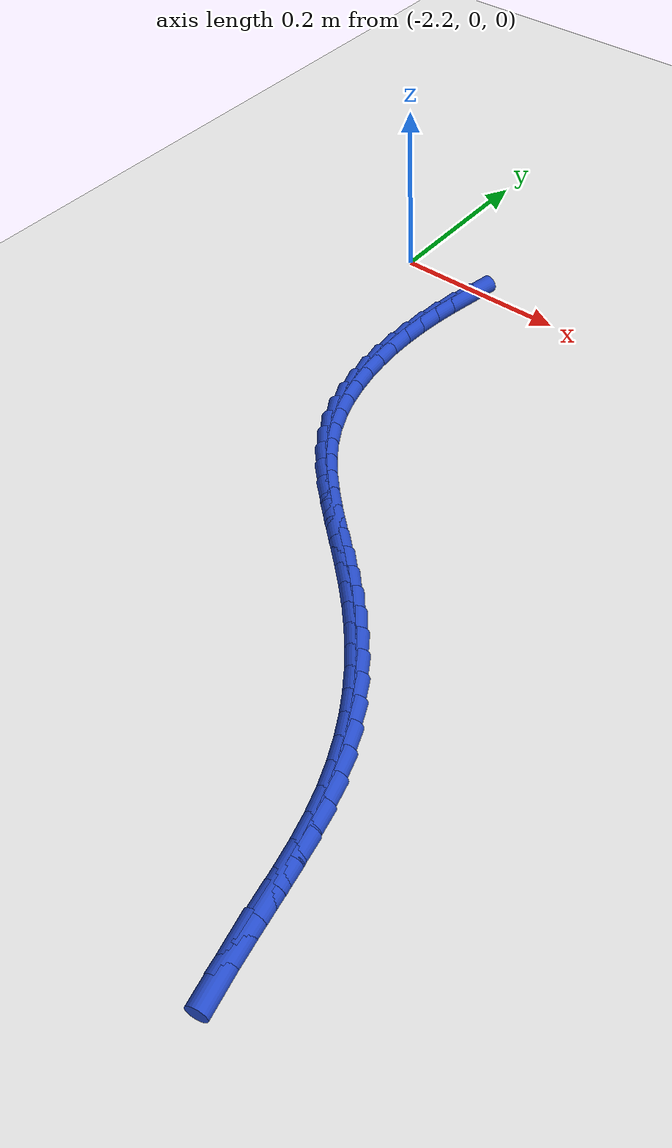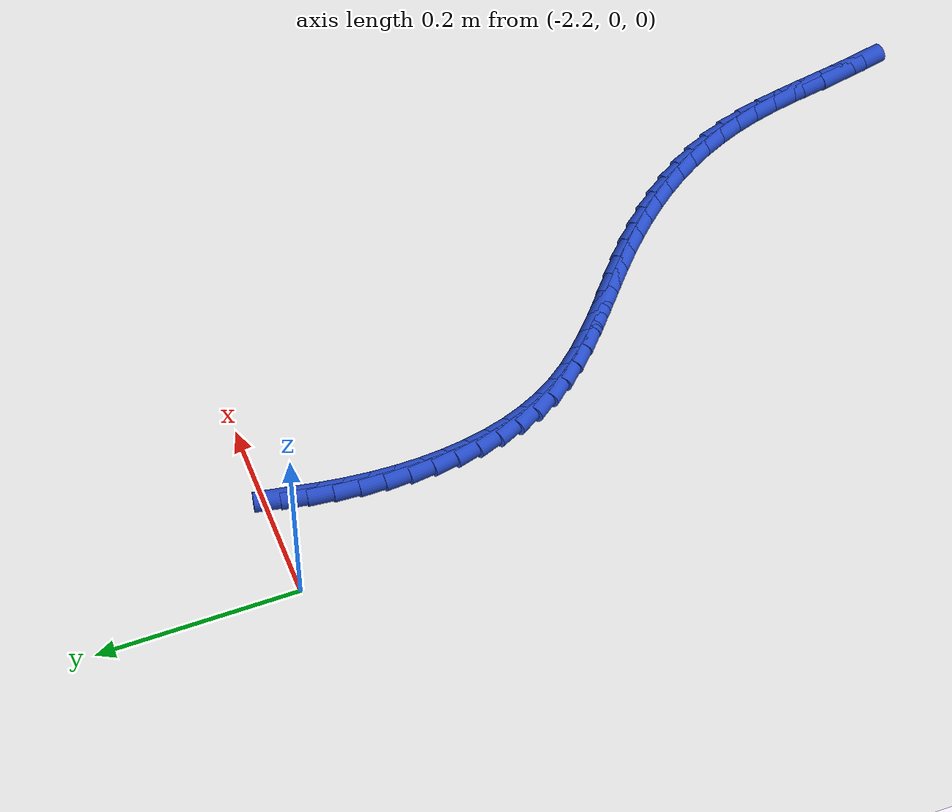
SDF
<sdf version="1.6">
 <world name="default">
  <model name="ground_plane">
   <static>1</static>
   <link name="link">
    <collision name="collision">
     <geometry><plane><normal>0 0 1</normal><size>100 100</size></plane></geometry>
     <surface><friction><ode><mu>100</mu><mu2>50</mu2></ode></friction></surface>
    </collision>
    <visual name="visual">
     <cast_shadows>0</cast_shadows>
     <geometry><plane><normal>0 0 1</normal><size>100 100</size></plane></geometry>
     <material>
      <script><uri>file://media/materials/scripts/gazebo.material</uri><name>Gazebo/WhiteGlow</name></script>
     </material>
    </visual>
   </link>
  </model>
  <model name="line">
   <link name="link_140">
    <pose>-2.100947286793525 -0.02749661532915055 0.01 0 1.57 1.386808997985382</pose>
    <collision name="collision">
     <geometry><cylinder><radius>0.01</radius><length>0.08</length></cylinder></geometry>
    </collision>
    <visual name="visual">
     <material>
      <script><name>Gazebo/Blue</name><uri>file://media/materials/scripts/gazebo.material</uri></script>
     </material>
     <geometry><cylinder><radius>0.01</radius><length>0.08</length></cylinder></geometry>
    </visual>
   </link>
   <link name="link_141">
    <pose>-2.105563423923904 -0.052302300369996446 0.01 0 1.57 1.4303812375989882</pose>
    <collision name="collision">
     <geometry><cylinder><radius>0.01</radius><length>0.08</length></cylinder></geometry>
    </collision>
    <visual name="visual">
     <material>
      <script><name>Gazebo/Blue</name><uri>file://media/materials/scripts/gazebo.material</uri></script>
     </material>
     <geometry><cylinder><radius>0.01</radius><length>0.08</length></cylinder></geometry>
    </visual>
   </link>
   <link name="link_142">
    <pose>-2.1090977252058356 -0.07730704036752022 0.01 0 1.57 1.476584101286767</pose>
    <collision name="collision">
     <geometry><cylinder><radius>0.01</radius><length>0.08</length></cylinder></geometry>
    </collision>
    <visual name="visual">
     <material>
      <script><name>Gazebo/Blue</name><uri>file://media/materials/scripts/gazebo.material</uri></script>
     </material>
     <geometry><cylinder><radius>0.01</radius><length>0.08</length></cylinder></geometry>
    </visual>
   </link>
   <link name="link_143">
    <pose>-2.1114665081755817 -0.10237565977307052 0.01 0 1.57 1.5260381555016607</pose>
    <collision name="collision">
     <geometry><cylinder><radius>0.01</radius><length>0.08</length></cylinder></geometry>
    </collision>
    <visual name="visual">
     <material>
      <script><name>Gazebo/Blue</name><uri>file://media/materials/scripts/gazebo.material</uri></script>
     </material>
     <geometry><cylinder><radius>0.01</radius><length>0.08</length></cylinder></geometry>
    </visual>
   </link>
   <link name="link_144">
    <pose>-2.1125860903694034 -0.12737298303799602 0.01 0 1.57 -1.5621925165578252</pose>
    <collision name="collision">
     <geometry><cylinder><radius>0.01</radius><length>0.08</length></cylinder></geometry>
    </collision>
    <visual name="visual">
     <material>
      <script><name>Gazebo/Blue</name><uri>file://media/materials/scripts/gazebo.material</uri></script>
     </material>
     <geometry><cylinder><radius>0.01</radius><length>0.08</length></cylinder></geometry>
    </visual>
   </link>
   <link name="link_145">
    <pose>-2.1123727893235626 -0.15216383461364524 0.01 0 1.57 -1.5042314290446446</pose>
    <collision name="collision">
     <geometry><cylinder><radius>0.01</radius><length>0.08</length></cylinder></geometry>
    </collision>
    <visual name="visual">
     <material>
      <script><name>Gazebo/Blue</name><uri>file://media/materials/scripts/gazebo.material</uri></script>
     </material>
     <geometry><cylinder><radius>0.01</radius><length>0.08</length></cylinder></geometry>
    </visual>
   </link>
   <link name="link_146">
    <pose>-2.11074292257432 -0.17661303895136762 0.01 0 1.57 -1.4409591525752148</pose>
    <collision name="collision">
     <geometry><cylinder><radius>0.01</radius><length>0.08</length></cylinder></geometry>
    </collision>
    <visual name="visual">
     <material>
      <script><name>Gazebo/Blue</name><uri>file://media/materials/scripts/gazebo.material</uri></script>
     </material>
     <geometry><cylinder><radius>0.01</radius><length>0.08</length></cylinder></geometry>
    </visual>
   </link>
   <link name="link_147">
    <pose>-2.107612807657938 -0.20058542050251027 0.01 0 1.57 -1.3716738801312711</pose>
    <collision name="collision">
     <geometry><cylinder><radius>0.01</radius><length>0.08</length></cylinder></geometry>
    </collision>
    <visual name="visual">
     <material>
      <script><name>Gazebo/Blue</name><uri>file://media/materials/scripts/gazebo.material</uri></script>
     </material>
     <geometry><cylinder><radius>0.01</radius><length>0.08</length></cylinder></geometry>
    </visual>
   </link>
   <link name="link_148">
    <pose>-2.102898762110678 -0.2239458037184226 0.01 0 1.57 -1.295740090590028</pose>
    <collision name="collision">
     <geometry><cylinder><radius>0.01</radius><length>0.08</length></cylinder></geometry>
    </collision>
    <visual name="visual">
     <material>
      <script><name>Gazebo/Blue</name><uri>file://media/materials/scripts/gazebo.material</uri></script>
     </material>
     <geometry><cylinder><radius>0.01</radius><length>0.08</length></cylinder></geometry>
    </visual>
   </link>
   <link name="link_149">
    <pose>-2.0965171034687997 -0.2465590130504531 0.01 0 1.57 -1.2126760920760444</pose>
    <collision name="collision">
     <geometry><cylinder><radius>0.01</radius><length>0.08</length></cylinder></geometry>
    </collision>
    <visual name="visual">
     <material>
      <script><name>Gazebo/Blue</name><uri>file://media/materials/scripts/gazebo.material</uri></script>
     </material>
     <geometry><cylinder><radius>0.01</radius><length>0.08</length></cylinder></geometry>
    </visual>
   </link>
   <link name="link_150">
    <pose>-2.0883841492685664 -0.26828987294995055 0.01 0 1.57 -1.1222750373897283</pose>
    <collision name="collision">
     <geometry><cylinder><radius>0.01</radius><length>0.08</length></cylinder></geometry>
    </collision>
    <visual name="visual">
     <material>
      <script><name>Gazebo/Blue</name><uri>file://media/materials/scripts/gazebo.material</uri></script>
     </material>
     <geometry><cylinder><radius>0.01</radius><length>0.08</length></cylinder></geometry>
    </visual>
   </link>
   <link name="link_151">
    <pose>-2.0784162170462386 -0.28900320786826345 0.01 0 1.57 -1.0247809444451872</pose>
    <collision name="collision">
     <geometry><cylinder><radius>0.01</radius><length>0.08</length></cylinder></geometry>
    </collision>
    <visual name="visual">
     <material>
      <script><name>Gazebo/Blue</name><uri>file://media/materials/scripts/gazebo.material</uri></script>
     </material>
     <geometry><cylinder><radius>0.01</radius><length>0.08</length></cylinder></geometry>
    </visual>
   </link>
   <link name="link_152">
    <pose>-2.0665301792624806 -0.30856431925571265 0.01 0 1.57 -0.9276226216510821</pose>
    <collision name="collision">
     <geometry><cylinder><radius>0.01</radius><length>0.08</length></cylinder></geometry>
    </collision>
    <visual name="visual">
     <material>
      <script><name>Gazebo/Blue</name><uri>file://media/materials/scripts/gazebo.material</uri></script>
     </material>
     <geometry><cylinder><radius>0.01</radius><length>0.08</length></cylinder></geometry>
    </visual>
   </link>
   <link name="link_153">
    <pose>-2.0527590562285143 -0.32693834631540714 0.01 0 1.57 -0.8466984680146145</pose>
    <collision name="collision">
     <geometry><cylinder><radius>0.01</radius><length>0.08</length></cylinder></geometry>
    </collision>
    <visual name="visual">
     <material>
      <script><name>Gazebo/Blue</name><uri>file://media/materials/scripts/gazebo.material</uri></script>
     </material>
     <geometry><cylinder><radius>0.01</radius><length>0.08</length></cylinder></geometry>
    </visual>
   </link>
   <link name="link_154">
    <pose>-2.037394278544083 -0.34431255119443693 0.01 0 1.57 -0.784177720261267</pose>
    <collision name="collision">
     <geometry><cylinder><radius>0.01</radius><length>0.08</length></cylinder></geometry>
    </collision>
    <visual name="visual">
     <material>
      <script><name>Gazebo/Blue</name><uri>file://media/materials/scripts/gazebo.material</uri></script>
     </material>
     <geometry><cylinder><radius>0.01</radius><length>0.08</length></cylinder></geometry>
    </visual>
   </link>
   <link name="link_155">
    <pose>-2.0207621284172728 -0.36090415360037853 0.01 0 1.57 -0.7393876352019352</pose>
    <collision name="collision">
     <geometry><cylinder><radius>0.01</radius><length>0.08</length></cylinder></geometry>
    </collision>
    <visual name="visual">
     <material>
      <script><name>Gazebo/Blue</name><uri>file://media/materials/scripts/gazebo.material</uri></script>
     </material>
     <geometry><cylinder><radius>0.01</radius><length>0.08</length></cylinder></geometry>
    </visual>
   </link>
   <link name="link_156">
    <pose>-2.003188888056174 -0.3769303732408067 0.01 0 1.57 -0.7114182636627777</pose>
    <collision name="collision">
     <geometry><cylinder><radius>0.01</radius><length>0.08</length></cylinder></geometry>
    </collision>
    <visual name="visual">
     <material>
      <script><name>Gazebo/Blue</name><uri>file://media/materials/scripts/gazebo.material</uri></script>
     </material>
     <geometry><cylinder><radius>0.01</radius><length>0.08</length></cylinder></geometry>
    </visual>
   </link>
   <link name="link_157">
    <pose>-1.985000839668875 -0.39260842982329797 0.01 0 1.57 -0.6995093543474936</pose>
    <collision name="collision">
     <geometry><cylinder><radius>0.01</radius><length>0.08</length></cylinder></geometry>
    </collision>
    <visual name="visual">
     <material>
      <script><name>Gazebo/Blue</name><uri>file://media/materials/scripts/gazebo.material</uri></script>
     </material>
     <geometry><cylinder><radius>0.01</radius><length>0.08</length></cylinder></geometry>
    </visual>
   </link>
   <link name="link_158">
    <pose>-1.9665242654634625 -0.40815554305542806 0.01 0 1.57 -0.703245749405325</pose>
    <collision name="collision">
     <geometry><cylinder><radius>0.01</radius><length>0.08</length></cylinder></geometry>
    </collision>
    <visual name="visual">
     <material>
      <script><name>Gazebo/Blue</name><uri>file://media/materials/scripts/gazebo.material</uri></script>
     </material>
     <geometry><cylinder><radius>0.01</radius><length>0.08</length></cylinder></geometry>
    </visual>
   </link>
   <link name="link_159">
    <pose>-1.948085447648027 -0.4237889326447732 0.01 0 1.57 -0.7226230960474676</pose>
    <collision name="collision">
     <geometry><cylinder><radius>0.01</radius><length>0.08</length></cylinder></geometry>
    </collision>
    <visual name="visual">
     <material>
      <script><name>Gazebo/Blue</name><uri>file://media/materials/scripts/gazebo.material</uri></script>
     </material>
     <geometry><cylinder><radius>0.01</radius><length>0.08</length></cylinder></geometry>
    </visual>
   </link>
   <link name="link_160">
    <pose>-1.9300106684306553 -0.43972581829890894 0.01 0 1.57 -0.7564730774360917</pose>
    <collision name="collision">
     <geometry><cylinder><radius>0.01</radius><length>0.08</length></cylinder></geometry>
    </collision>
    <visual name="visual">
     <material>
      <script><name>Gazebo/Blue</name><uri>file://media/materials/scripts/gazebo.material</uri></script>
     </material>
     <geometry><cylinder><radius>0.01</radius><length>0.08</length></cylinder></geometry>
    </visual>
   </link>
   <link name="link_161">
    <pose>-1.912594186818591 -0.45616281204461995 0.01 0 1.57 -0.7971812672165015</pose>
    <collision name="collision">
     <geometry><cylinder><radius>0.01</radius><length>0.08</length></cylinder></geometry>
    </collision>
    <visual name="visual">
     <material>
      <script><name>Gazebo/Blue</name><uri>file://media/materials/scripts/gazebo.material</uri></script>
     </material>
     <geometry><cylinder><radius>0.01</radius><length>0.08</length></cylinder></geometry>
    </visual>
   </link>
   <link name="link_162">
    <pose>-1.895964040979266 -0.47318955889985964 0.01 0 1.57 -0.8422133584528534</pose>
    <collision name="collision">
     <geometry><cylinder><radius>0.01</radius><length>0.08</length></cylinder></geometry>
    </collision>
    <visual name="visual">
     <material>
      <script><name>Gazebo/Blue</name><uri>file://media/materials/scripts/gazebo.material</uri></script>
     </material>
     <geometry><cylinder><radius>0.01</radius><length>0.08</length></cylinder></geometry>
    </visual>
   </link>
   <link name="link_163">
    <pose>-1.8801945038276928 -0.4908611046816806 0.01 0 1.57 -0.8915055385792542</pose>
    <collision name="collision">
     <geometry><cylinder><radius>0.01</radius><length>0.08</length></cylinder></geometry>
    </collision>
    <visual name="visual">
     <material>
      <script><name>Gazebo/Blue</name><uri>file://media/materials/scripts/gazebo.material</uri></script>
     </material>
     <geometry><cylinder><radius>0.01</radius><length>0.08</length></cylinder></geometry>
    </visual>
   </link>
   <link name="link_164">
    <pose>-1.865359821109754 -0.5092324777231645 0.01 0 1.57 -0.9448923715370878</pose>
    <collision name="collision">
     <geometry><cylinder><radius>0.01</radius><length>0.08</length></cylinder></geometry>
    </collision>
    <visual name="visual">
     <material>
      <script><name>Gazebo/Blue</name><uri>file://media/materials/scripts/gazebo.material</uri></script>
     </material>
     <geometry><cylinder><radius>0.01</radius><length>0.08</length></cylinder></geometry>
    </visual>
   </link>
   <link name="link_165">
    <pose>-1.8515342385713334 -0.5283587063573911 0.01 0 1.57 -1.0020838738980025</pose>
    <collision name="collision">
     <geometry><cylinder><radius>0.01</radius><length>0.08</length></cylinder></geometry>
    </collision>
    <visual name="visual">
     <material>
      <script><name>Gazebo/Blue</name><uri>file://media/materials/scripts/gazebo.material</uri></script>
     </material>
     <geometry><cylinder><radius>0.01</radius><length>0.08</length></cylinder></geometry>
    </visual>
   </link>
   <link name="link_166">
    <pose>-1.8387920019583144 -0.5482948189174424 0.01 0 1.57 -1.0626507138331978</pose>
    <collision name="collision">
     <geometry><cylinder><radius>0.01</radius><length>0.08</length></cylinder></geometry>
    </collision>
    <visual name="visual">
     <material>
      <script><name>Gazebo/Blue</name><uri>file://media/materials/scripts/gazebo.material</uri></script>
     </material>
     <geometry><cylinder><radius>0.01</radius><length>0.08</length></cylinder></geometry>
    </visual>
   </link>
   <link name="link_167">
    <pose>-1.82720735701658 -0.5690958437363993 0.01 0 1.57 -1.1260210061749614</pose>
    <collision name="collision">
     <geometry><cylinder><radius>0.01</radius><length>0.08</length></cylinder></geometry>
    </collision>
    <visual name="visual">
     <material>
      <script><name>Gazebo/Blue</name><uri>file://media/materials/scripts/gazebo.material</uri></script>
     </material>
     <geometry><cylinder><radius>0.01</radius><length>0.08</length></cylinder></geometry>
    </visual>
   </link>
   <link name="link_168">
    <pose>-1.8168545494920139 -0.5908168091473431 0.01 0 1.57 -1.1914926785352034</pose>
    <collision name="collision">
     <geometry><cylinder><radius>0.01</radius><length>0.08</length></cylinder></geometry>
    </collision>
    <visual name="visual">
     <material>
      <script><name>Gazebo/Blue</name><uri>file://media/materials/scripts/gazebo.material</uri></script>
     </material>
     <geometry><cylinder><radius>0.01</radius><length>0.08</length></cylinder></geometry>
    </visual>
   </link>
   <link name="link_169">
    <pose>-1.807807825130499 -0.6135127434833549 0.01 0 1.57 -1.2582579620592385</pose>
    <collision name="collision">
     <geometry><cylinder><radius>0.01</radius><length>0.08</length></cylinder></geometry>
    </collision>
    <visual name="visual">
     <material>
      <script><name>Gazebo/Blue</name><uri>file://media/materials/scripts/gazebo.material</uri></script>
     </material>
     <geometry><cylinder><radius>0.01</radius><length>0.08</length></cylinder></geometry>
    </visual>
   </link>
   <link name="link_170">
    <pose>-1.8001413281845176 -0.6372385808329025 0.01 0 1.57 -1.3205113537222266</pose>
    <collision name="collision">
     <geometry><cylinder><radius>0.01</radius><length>0.08</length></cylinder></geometry>
    </collision>
    <visual name="visual">
     <material>
      <script><name>Gazebo/Blue</name><uri>file://media/materials/scripts/gazebo.material</uri></script>
     </material>
     <geometry><cylinder><radius>0.01</radius><length>0.08</length></cylinder></geometry>
    </visual>
   </link>
   <link name="link_171">
    <pose>-1.7938236482871113 -0.6619512395109612 0.01 0 1.57 -1.364667608857079</pose>
    <collision name="collision">
     <geometry><cylinder><radius>0.01</radius><length>0.08</length></cylinder></geometry>
    </collision>
    <visual name="visual">
     <material>
      <script><name>Gazebo/Blue</name><uri>file://media/materials/scripts/gazebo.material</uri></script>
     </material>
     <geometry><cylinder><radius>0.01</radius><length>0.08</length></cylinder></geometry>
    </visual>
   </link>
   <link name="link_172">
    <pose>-1.7885181876830554 -0.6873242473179029 0.01 0 1.57 -1.3901901524762141</pose>
    <collision name="collision">
     <geometry><cylinder><radius>0.01</radius><length>0.08</length></cylinder></geometry>
    </collision>
    <visual name="visual">
     <material>
      <script><name>Gazebo/Blue</name><uri>file://media/materials/scripts/gazebo.material</uri></script>
     </material>
     <geometry><cylinder><radius>0.01</radius><length>0.08</length></cylinder></geometry>
    </visual>
   </link>
   <link name="link_173">
    <pose>-1.7838335146943287 -0.7129802144402155 0.01 0 1.57 -1.3982321723228046</pose>
    <collision name="collision">
     <geometry><cylinder><radius>0.01</radius><length>0.08</length></cylinder></geometry>
    </collision>
    <visual name="visual">
     <material>
      <script><name>Gazebo/Blue</name><uri>file://media/materials/scripts/gazebo.material</uri></script>
     </material>
     <geometry><cylinder><radius>0.01</radius><length>0.08</length></cylinder></geometry>
    </visual>
   </link>
   <link name="link_174">
    <pose>-1.7793781976429124 -0.7385417510643859 0.01 0 1.57 -1.3887975231048502</pose>
    <collision name="collision">
     <geometry><cylinder><radius>0.01</radius><length>0.08</length></cylinder></geometry>
    </collision>
    <visual name="visual">
     <material>
      <script><name>Gazebo/Blue</name><uri>file://media/materials/scripts/gazebo.material</uri></script>
     </material>
     <geometry><cylinder><radius>0.01</radius><length>0.08</length></cylinder></geometry>
    </visual>
   </link>
   <link name="link_175">
    <pose>-1.774760804850787 -0.7636314673769024 0.01 0 1.57 -1.3606298300043704</pose>
    <collision name="collision">
     <geometry><cylinder><radius>0.01</radius><length>0.08</length></cylinder></geometry>
    </collision>
    <visual name="visual">
     <material>
      <script><name>Gazebo/Blue</name><uri>file://media/materials/scripts/gazebo.material</uri></script>
     </material>
     <geometry><cylinder><radius>0.01</radius><length>0.08</length></cylinder></geometry>
    </visual>
   </link>
  </model>
 </world>
</sdf>
